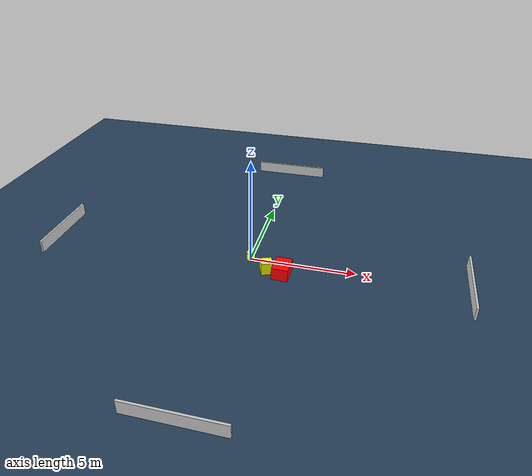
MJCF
<?xml version="1.0" ?>
<mujoco model="generated_environment">
  <option timestep="0.01" integrator="RK4" cone="elliptic"/>
  <default>
    <geom density="1"/>
  </default>
  <asset>
    <texture builtin="gradient" height="3072" name="skybox" rgb1="0.3 0.5 0.7" rgb2="0 0 0" type="skybox" width="512"/>
    <texture builtin="checker" height="300" name="groundplane" rgb1="0.2 0.3 0.4" rgb2="0.1 0.2 0.3" type="2d" width="300"/>
    <material name="groundplane" reflectance="0.2" texrepeat="5 5" texture="groundplane"/>
  </asset>
  <worldbody>
    <light dir="0 0 -1" directional="true" pos="0 0 1.5"/>
    <geom condim="3" friction="0.5 0.005 0.001" material="groundplane" name="floor" pos="0 0 0" size="0 0 0.05" type="plane"/>
    <body name="walls">
      <geom name="wall_1" condim="4" pos="-10.0 0.0 0.3" rgba="0.800000011920929 0.800000011920929 0.800000011920929 1.0" size="0.05 2.0 0.3" type="box"/>
      <geom name="wall_2" condim="4" pos="10.0 0.0 0.3" rgba="0.800000011920929 0.800000011920929 0.800000011920929 1.0" size="0.05 2.0 0.3" type="box"/>
      <geom name="wall_3" condim="4" pos="0.0 -10.0 0.3" rgba="0.800000011920929 0.800000011920929 0.800000011920929 1.0" size="2.0 0.05 0.3" type="box"/>
      <geom name="wall_4" condim="4" pos="0.0 10.0 0.3" rgba="0.800000011920929 0.800000011920929 0.800000011920929 1.0" size="2.0 0.05 0.3" type="box"/>
    </body>
    <body name="robot">
      <joint name="joint_x" type="slide" pos="0 0 0" axis="1 0 0"/>
      <joint name="joint_y" type="slide" pos="0 0 0" axis="0 1 0"/>
      <geom name="robot" type="cylinder" pos="0.0 0.0 0.2" size="0.2 0.2 0.0" mass="5.0" friction="1.0 0.005 0.0001" condim="4" rgba="1.0 1.0 0.0 1.0"/>
    </body>
    <body name="obstacle_1_movable">
      <geom name="obstacle_1_movable" condim="4" pos="0.9449732165215828 -0.8171145368397507 0.3" euler="0 0 201.48428666504256" friction="0.0 0.005 0.001" rgba="1.0 1.0 0.0 1.0" size="0.26559721813521475 0.25837070340139723 0.3" type="box" mass="0.1"/>
      <joint type="free"/>
    </body>
    <body name="obstacle_2_static">
      <geom name="obstacle_2_static" condim="4" pos="1.6801284662444695 -0.8593650937704699 0.3" euler="0 0 358.4343315876265" friction="0.0 0.005 0.001" rgba="1.0 0.0 0.0 1.0" size="0.38152280484388285 0.5050142080644378 0.3" type="box"/>
    </body>
  </worldbody>
  <actuator>
    <motor name="actuator_x" joint="joint_x" gear="1" ctrlrange="-1 1"/>
    <motor name="actuator_y" joint="joint_y" gear="1" ctrlrange="-1 1"/>
  </actuator>
</mujoco>
